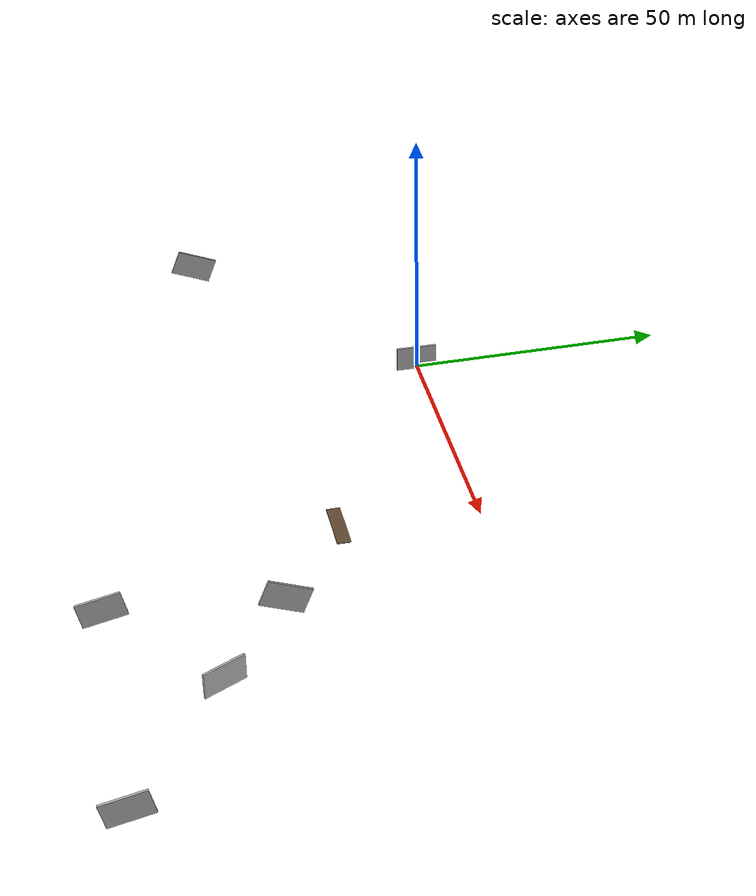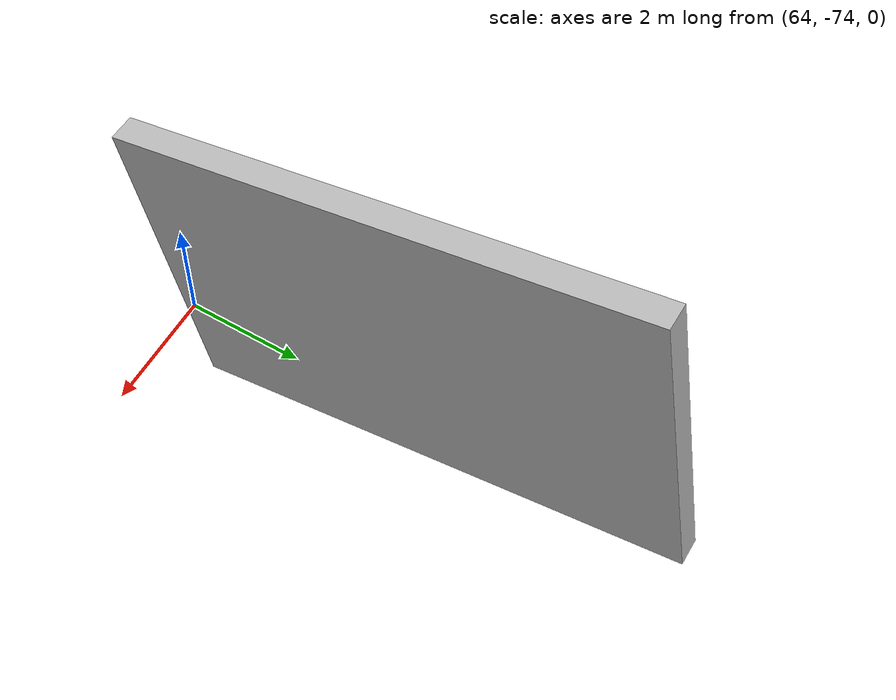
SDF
<sdf version="1.5">
 <world name="default">
  <scene><shadows>0</shadows></scene>
  <include><uri>model://sun_2</uri></include>
  <include>
   <static>true</static>
   <pose>-1.1 0.18 -1 0 0 -1.586</pose>
   <name>w1</name>
   <uri>model://smaze_wall</uri>
  </include>
  <include>
   <static>true</static>
   <pose>-31.463 -41.132 8.711 0 -0.3784 -1.586</pose>
   <name>w2</name>
   <uri>model://smaze_wall</uri>
  </include>
  <include>
   <static>true</static>
   <pose>74.0 -40.724 5.897 0 -0.3784 -1.586</pose>
   <name>w3</name>
   <uri>model://smaze_wall</uri>
  </include>
  <include>
   <static>true</static>
   <pose>64.79 -69.038 1.147 0 0.2157 -1.586</pose>
   <name>w4</name>
   <uri>model://smaze_wall</uri>
  </include>
  <include>
   <static>true</static>
   <pose>108.515 -69.67 -0.8383 0 0.2157 -1.586</pose>
   <name>w5</name>
   <uri>model://smaze_wall</uri>
  </include>
  <include>
   <static>true</static>
   <pose>86.213 -52.06 1.763 0 0.0 -1.1254</pose>
   <name>w6</name>
   <uri>model://smaze_wall</uri>
  </include>
  <model name="bump">
   <static>true</static>
   <pose>54.0 -27.0 5.35 0 0 1.57</pose>
   <link name="link">
    <collision name="collision">
     <geometry><box><size>2.5 10 0.1</size></box></geometry>
     <surface><friction><ode><mu>1.5</mu><mu2>1.5</mu2></ode></friction></surface>
    </collision>
    <visual name="visual">
     <geometry><box><size>2.5 10 0.1</size></box></geometry>
     <material><ambient>0.4 0.3 0.2 1</ambient><diffuse>0.4 0.3 0.2 1</diffuse></material>
    </visual>
   </link>
  </model>
 </world>
</sdf>

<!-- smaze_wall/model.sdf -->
<sdf version="1.5">
  <model name="smaze_wall">
    <static>true</static>
    <link name="link">
      <pose>0 0 2.5 0 0 0</pose>
      <collision name="collision">
        <geometry>
          <box>
            <size>8 0.4 5</size>
          </box>
        </geometry>
        <surface>
          <friction>
            <ode>
              <mu>100.0</mu>
              <mu2>100.0</mu2>
            </ode>
          </friction>
        </surface>
      </collision>
      <visual name="visual">
        <geometry>
          <box>
            <size>8 0.4 5</size>
          </box>
        </geometry>
        <material>
          <script>
            <uri>model://smaze_wall/materials/scripts</uri>
            <uri>model://smaze_wall/materials/textures</uri>
            <name>vrc/smaze_wall</name>
          </script>
        </material>
      </visual>
    </link>
  </model>
</sdf>
